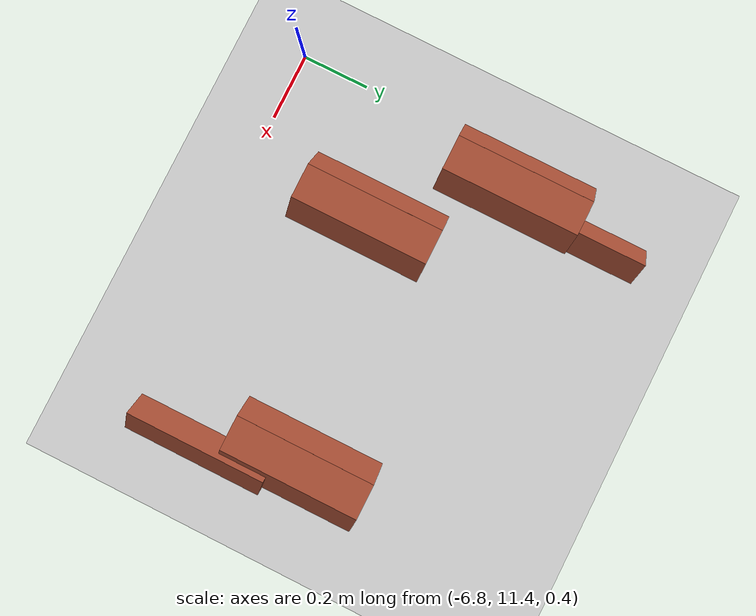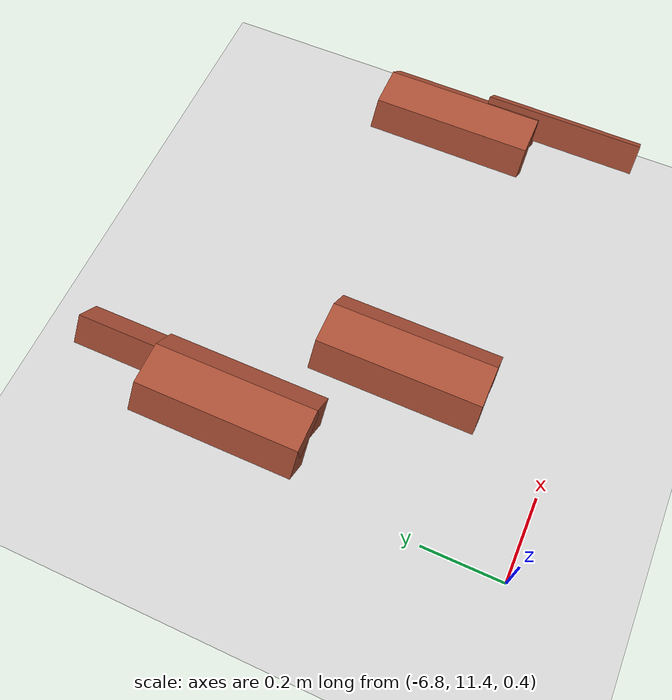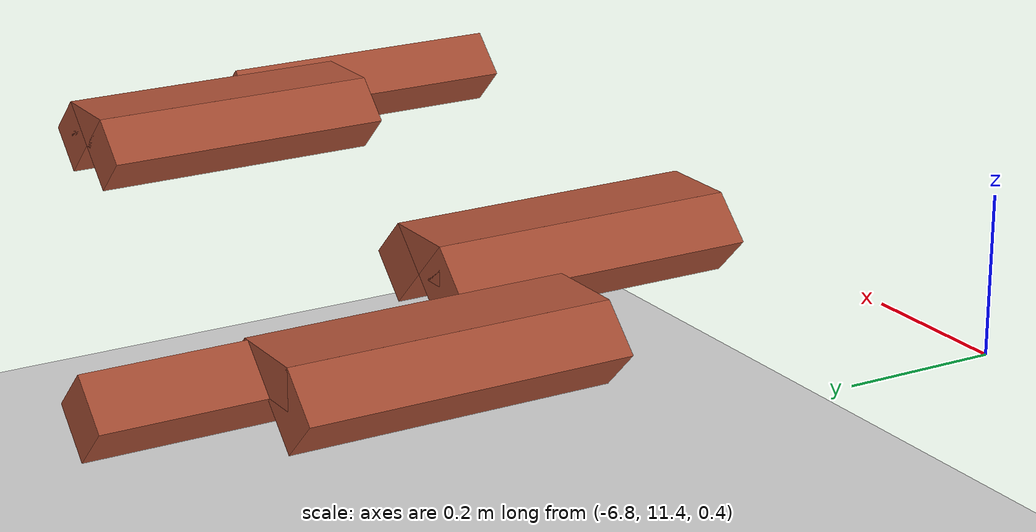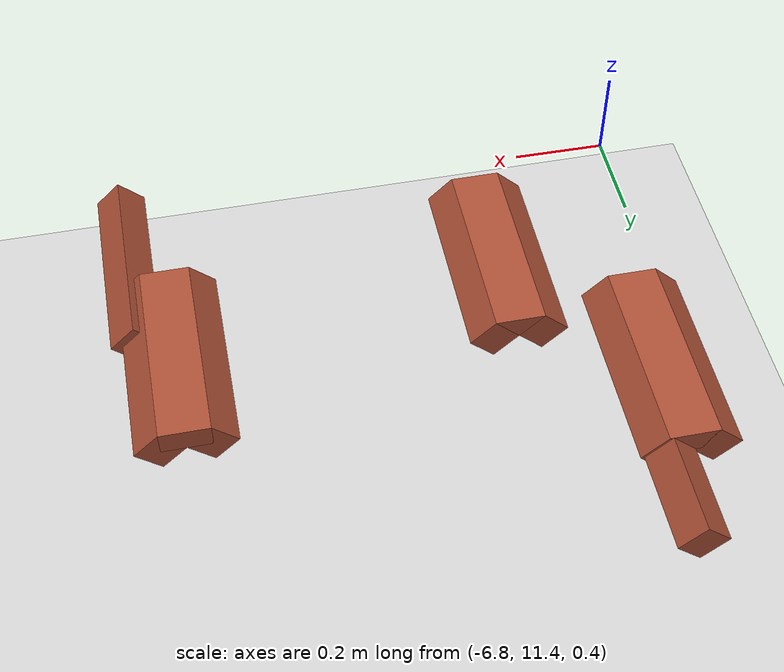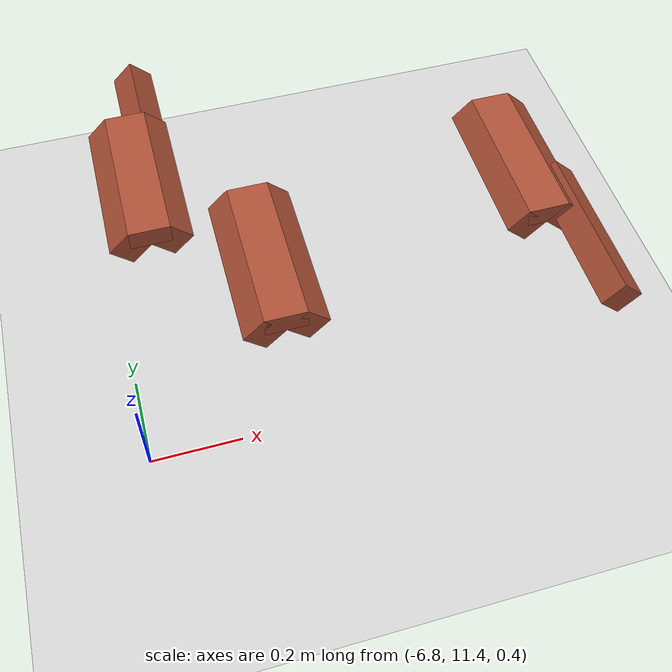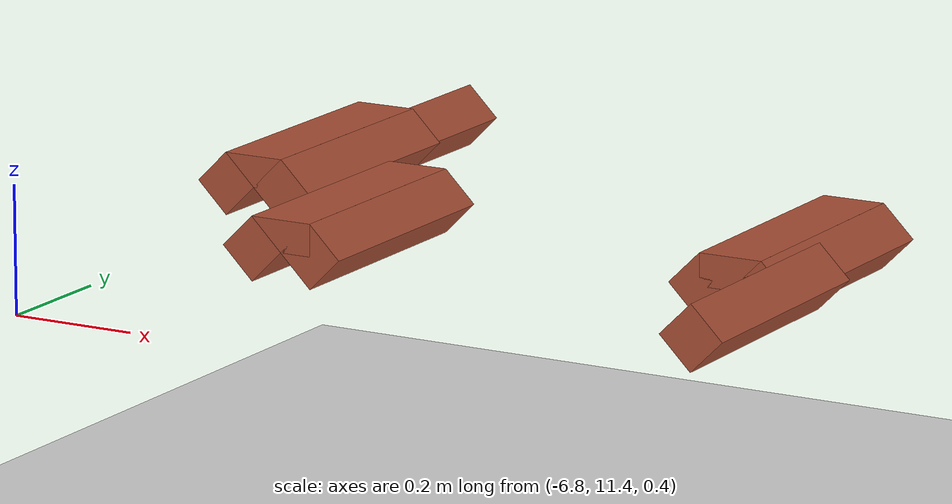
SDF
<sdf version="1.7">
 <world name="default">
  <model name="ground_plane">
   <static>1</static>
   <link name="link">
    <collision name="collision">
     <geometry><plane><normal>0 0 1</normal><size>100 100</size></plane></geometry>
     <surface><friction><ode><mu>100</mu><mu2>50</mu2></ode></friction></surface>
    </collision>
    <visual name="visual">
     <cast_shadows>0</cast_shadows>
     <geometry><plane><normal>0 0 1</normal><size>100 100</size></plane></geometry>
     <material>
      <script><uri>file://media/materials/scripts/gazebo.material</uri><name>Gazebo/Grey</name></script>
     </material>
    </visual>
   </link>
  </model>
  <model name="tumsek">
   <static>1</static>
   <pose>-5.17447 11.4027 0.5 0 -0 0</pose>
   <link name="tumsek_front_2">
    <pose>-0.528517 0.253678 0 0 0.785 0</pose>
    <collision name="tumsek_Collision"><geometry><box><size>0.0707 0.4 0.0707</size></box></geometry></collision>
    <visual name="tumsek_Visual">
     <geometry><box><size>0.0707 0.4 0.0707</size></box></geometry>
     <material>
      <script><uri>file://media/materials/scripts/gazebo.material</uri><name>Gazebo/Bricks</name></script>
      <ambient>1 1 1 1</ambient>
     </material>
    </visual>
   </link>
   <link name="tumsek_back_32">
    <pose>-1.48354 0.898786 0 0 0.785 0</pose>
    <collision name="tumsek_Collision"><geometry><box><size>0.0707 0.4 0.0707</size></box></geometry></collision>
    <visual name="tumsek_Visual">
     <geometry><box><size>0.0707 0.4 0.0707</size></box></geometry>
     <material>
      <script><uri>file://media/materials/scripts/gazebo.material</uri><name>Gazebo/Bricks</name></script>
      <ambient>1 1 1 1</ambient>
     </material>
    </visual>
   </link>
   <link name="tumsek_main_40">
    <pose>-1.27737 0.378186 0 0 -0 0</pose>
    <collision name="tumsek_Collision">
     <geometry><box><size>0.1 0.4 0.05</size></box></geometry>
     <pose>0 0 0.025 0 -0 0</pose>
    </collision>
    <visual name="tumsek_Visual">
     <pose>0 0 0.025 0 -0 0</pose>
     <geometry><box><size>0.1 0.4 0.05</size></box></geometry>
     <material>
      <script><uri>file://media/materials/scripts/gazebo.material</uri><name>Gazebo/Bricks</name></script>
      <ambient>1 1 1 1</ambient>
     </material>
     <meta><layer>0</layer></meta>
    </visual>
   </link>
   <link name="tumsek_front_40">
    <pose>-1.22737 0.378186 0 0 0.785 0</pose>
    <collision name="tumsek_Collision"><geometry><box><size>0.0707 0.4 0.0707</size></box></geometry></collision>
    <visual name="tumsek_Visual">
     <geometry><box><size>0.0707 0.4 0.0707</size></box></geometry>
     <material>
      <script><uri>file://media/materials/scripts/gazebo.material</uri><name>Gazebo/Bricks</name></script>
      <ambient>1 1 1 1</ambient>
     </material>
    </visual>
   </link>
   <link name="tumsek_back_40">
    <pose>-1.32737 0.378186 0 0 0.785 0</pose>
    <collision name="tumsek_Collision"><geometry><box><size>0.0707 0.4 0.0707</size></box></geometry></collision>
    <visual name="tumsek_Visual">
     <geometry><box><size>0.0707 0.4 0.0707</size></box></geometry>
     <material>
      <script><uri>file://media/materials/scripts/gazebo.material</uri><name>Gazebo/Bricks</name></script>
      <ambient>1 1 1 1</ambient>
     </material>
    </visual>
   </link>
   <link name="tumsek_main_45">
    <pose>-1.52624 0.703274 0 0 -0 0</pose>
    <collision name="tumsek_Collision">
     <geometry><box><size>0.1 0.4 0.05</size></box></geometry>
     <pose>0 0 0.025 0 -0 0</pose>
    </collision>
    <visual name="tumsek_Visual">
     <pose>0 0 0.025 0 -0 0</pose>
     <geometry><box><size>0.1 0.4 0.05</size></box></geometry>
     <material>
      <script><uri>file://media/materials/scripts/gazebo.material</uri><name>Gazebo/Bricks</name></script>
      <ambient>1 1 1 1</ambient>
     </material>
     <meta><layer>0</layer></meta>
    </visual>
   </link>
   <link name="tumsek_front_45">
    <pose>-1.47624 0.703274 0 0 0.785 0</pose>
    <collision name="tumsek_Collision"><geometry><box><size>0.0707 0.4 0.0707</size></box></geometry></collision>
    <visual name="tumsek_Visual">
     <geometry><box><size>0.0707 0.4 0.0707</size></box></geometry>
     <material>
      <script><uri>file://media/materials/scripts/gazebo.material</uri><name>Gazebo/Bricks</name></script>
      <ambient>1 1 1 1</ambient>
     </material>
    </visual>
   </link>
   <link name="tumsek_back_45">
    <pose>-1.57624 0.703274 0 0 0.785 0</pose>
    <collision name="tumsek_Collision"><geometry><box><size>0.0707 0.4 0.0707</size></box></geometry></collision>
    <visual name="tumsek_Visual">
     <geometry><box><size>0.0707 0.4 0.0707</size></box></geometry>
     <material>
      <script><uri>file://media/materials/scripts/gazebo.material</uri><name>Gazebo/Bricks</name></script>
      <ambient>1 1 1 1</ambient>
     </material>
    </visual>
   </link>
   <link name="tumsek_main_54">
    <pose>-0.602211 0.514307 0 0 -0 0</pose>
    <collision name="tumsek_Collision">
     <geometry><box><size>0.1 0.4 0.05</size></box></geometry>
     <pose>0 0 0.025 0 -0 0</pose>
    </collision>
    <visual name="tumsek_Visual">
     <pose>0 0 0.025 0 -0 0</pose>
     <geometry><box><size>0.1 0.4 0.05</size></box></geometry>
     <material>
      <script><uri>file://media/materials/scripts/gazebo.material</uri><name>Gazebo/Bricks</name></script>
      <ambient>1 1 1 1</ambient>
     </material>
     <meta><layer>0</layer></meta>
    </visual>
   </link>
   <link name="tumsek_front_54">
    <pose>-0.552211 0.514307 0 0 0.785 0</pose>
    <collision name="tumsek_Collision"><geometry><box><size>0.0707 0.4 0.0707</size></box></geometry></collision>
    <visual name="tumsek_Visual">
     <geometry><box><size>0.0707 0.4 0.0707</size></box></geometry>
     <material>
      <script><uri>file://media/materials/scripts/gazebo.material</uri><name>Gazebo/Bricks</name></script>
      <ambient>1 1 1 1</ambient>
     </material>
    </visual>
   </link>
   <link name="tumsek_back_54">
    <pose>-0.652211 0.514307 0 0 0.785 0</pose>
    <collision name="tumsek_Collision"><geometry><box><size>0.0707 0.4 0.0707</size></box></geometry></collision>
    <visual name="tumsek_Visual">
     <geometry><box><size>0.0707 0.4 0.0707</size></box></geometry>
     <material>
      <script><uri>file://media/materials/scripts/gazebo.material</uri><name>Gazebo/Bricks</name></script>
      <ambient>1 1 1 1</ambient>
     </material>
    </visual>
   </link>
  </model>
 </world>
</sdf>
